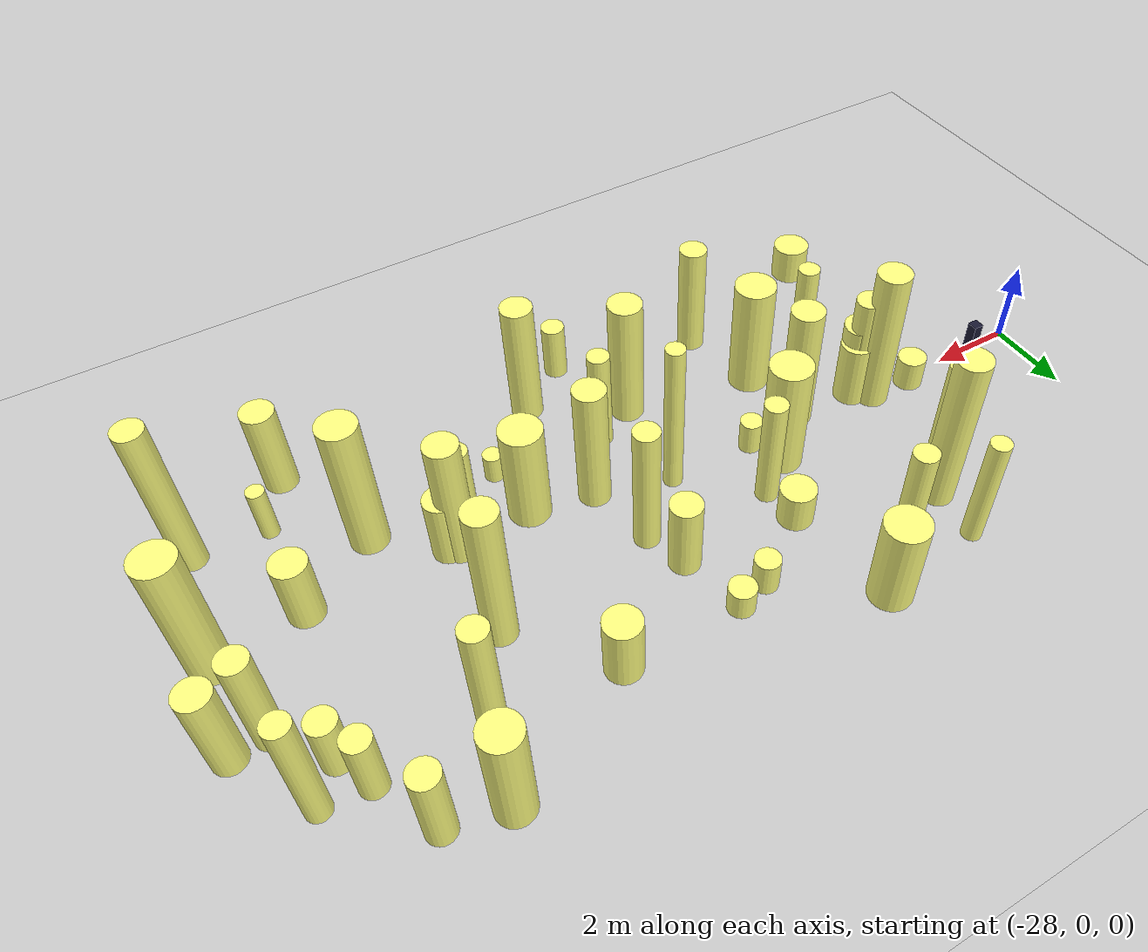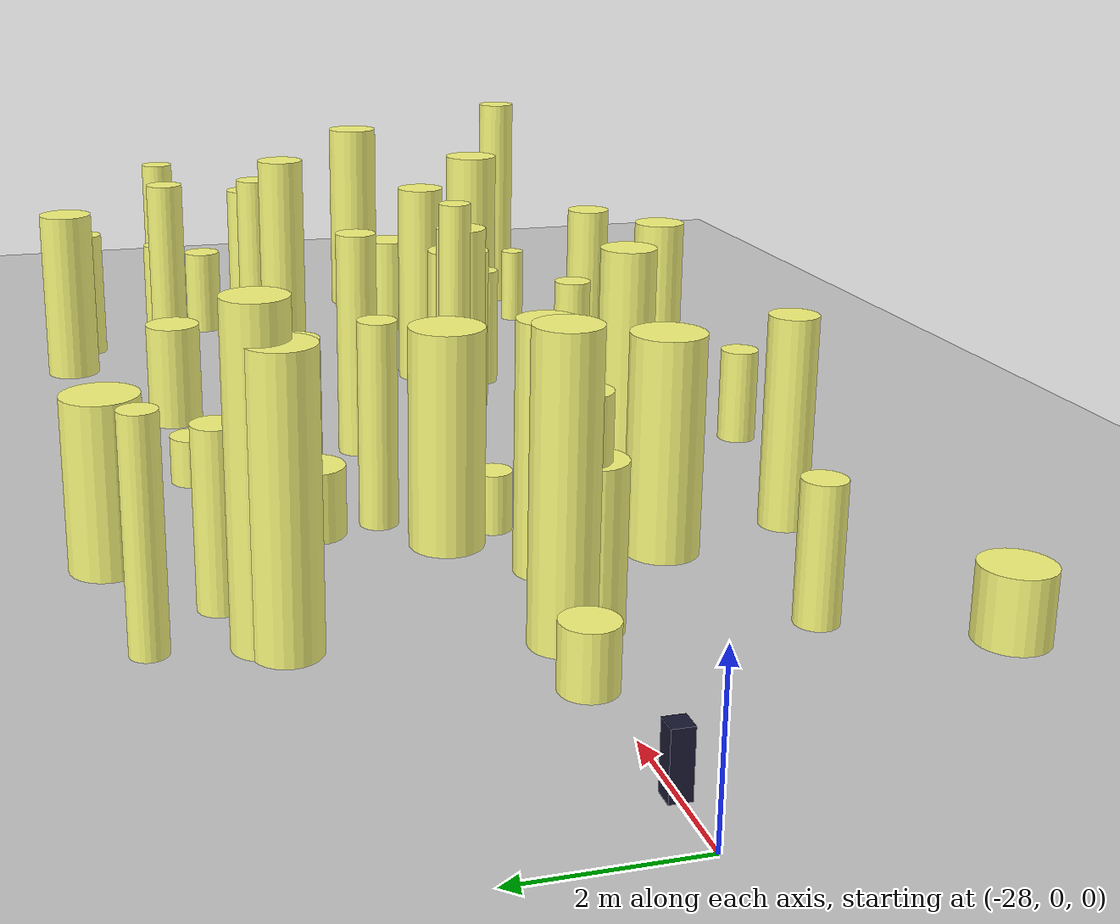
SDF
<sdf version="1.4">
 <world name="default">
  <include><uri>model://ground_plane</uri></include>
  <include><uri>model://sun</uri></include>
  <model name="forest">
   <static>true</static>
   <link name="cylinder5">
    <pose>-14.917778410111532 -2.365029276385857 0.33924573023969384 0 0 0</pose>
    <visual name="visual">
     <geometry>
      <cylinder><radius>0.22715811138292039</radius><length>0.6784914604793877</length></cylinder>
     </geometry>
     <material>
      <ambient>0.6 0.6 0.6 1</ambient>
      <diffuse>1 1 0.5 1</diffuse>
      <specular>0 0 0</specular>
      <emissive>0 0 0 1</emissive>
     </material>
    </visual>
    <collision name="collision">
     <geometry>
      <cylinder><radius>0.22715811138292039</radius><length>0.6784914604793877</length></cylinder>
     </geometry>
     <max_contacts>0</max_contacts>
    </collision>
   </link>
   <link name="cylinder6">
    <pose>-19.81368941153287 1.2810669564978836 1.3848295582383636 0 0 0</pose>
    <visual name="visual">
     <geometry>
      <cylinder><radius>0.25956951055257527</radius><length>2.7696591164767272</length></cylinder>
     </geometry>
     <material>
      <ambient>0.6 0.6 0.6 1</ambient>
      <diffuse>1 1 0.5 1</diffuse>
      <specular>0 0 0</specular>
      <emissive>0 0 0 1</emissive>
     </material>
    </visual>
    <collision name="collision">
     <geometry>
      <cylinder><radius>0.25956951055257527</radius><length>2.7696591164767272</length></cylinder>
     </geometry>
     <max_contacts>0</max_contacts>
    </collision>
   </link>
   <link name="cylinder23">
    <pose>-14.84910226127406 3.4780006436737807 0.7836656961386094 0 0 0</pose>
    <visual name="visual">
     <geometry>
      <cylinder><radius>0.41026654295973275</radius><length>1.5673313922772187</length></cylinder>
     </geometry>
     <material>
      <ambient>0.6 0.6 0.6 1</ambient>
      <diffuse>1 1 0.5 1</diffuse>
      <specular>0 0 0</specular>
      <emissive>0 0 0 1</emissive>
     </material>
    </visual>
    <collision name="collision">
     <geometry>
      <cylinder><radius>0.41026654295973275</radius><length>1.5673313922772187</length></cylinder>
     </geometry>
     <max_contacts>0</max_contacts>
    </collision>
   </link>
   <link name="cylinder26">
    <pose>-8.752198740586898 3.168655074511653 1.5249935512294304 0 0 0</pose>
    <visual name="visual">
     <geometry>
      <cylinder><radius>0.27012381679006403</radius><length>3.0499871024588607</length></cylinder>
     </geometry>
     <material>
      <ambient>0.6 0.6 0.6 1</ambient>
      <diffuse>1 1 0.5 1</diffuse>
      <specular>0 0 0</specular>
      <emissive>0 0 0 1</emissive>
     </material>
    </visual>
    <collision name="collision">
     <geometry>
      <cylinder><radius>0.27012381679006403</radius><length>3.0499871024588607</length></cylinder>
     </geometry>
     <max_contacts>0</max_contacts>
    </collision>
   </link>
   <link name="cylinder29">
    <pose>-21.121205069637394 -3.870491480591812 1.4228794701995162 0 0 0</pose>
    <visual name="visual">
     <geometry>
      <cylinder><radius>0.3268050522809638</radius><length>2.8457589403990324</length></cylinder>
     </geometry>
     <material>
      <ambient>0.6 0.6 0.6 1</ambient>
      <diffuse>1 1 0.5 1</diffuse>
      <specular>0 0 0</specular>
      <emissive>0 0 0 1</emissive>
     </material>
    </visual>
    <collision name="collision">
     <geometry>
      <cylinder><radius>0.3268050522809638</radius><length>2.8457589403990324</length></cylinder>
     </geometry>
     <max_contacts>0</max_contacts>
    </collision>
   </link>
   <link name="cylinder34">
    <pose>-20.69903656651999 0.5843863166121688 1.4367598693355228 0 0 0</pose>
    <visual name="visual">
     <geometry>
      <cylinder><radius>0.4882078344602088</radius><length>2.8735197386710456</length></cylinder>
     </geometry>
     <material>
      <ambient>0.6 0.6 0.6 1</ambient>
      <diffuse>1 1 0.5 1</diffuse>
      <specular>0 0 0</specular>
      <emissive>0 0 0 1</emissive>
     </material>
    </visual>
    <collision name="collision">
     <geometry>
      <cylinder><radius>0.4882078344602088</radius><length>2.8735197386710456</length></cylinder>
     </geometry>
     <max_contacts>0</max_contacts>
    </collision>
   </link>
   <link name="cylinder39">
    <pose>-23.253010785968282 3.0240801046155195 1.7640948192729184 0 0 0</pose>
    <visual name="visual">
     <geometry>
      <cylinder><radius>0.41207023708942214</radius><length>3.528189638545837</length></cylinder>
     </geometry>
     <material>
      <ambient>0.6 0.6 0.6 1</ambient>
      <diffuse>1 1 0.5 1</diffuse>
      <specular>0 0 0</specular>
      <emissive>0 0 0 1</emissive>
     </material>
    </visual>
    <collision name="collision">
     <geometry>
      <cylinder><radius>0.41207023708942214</radius><length>3.528189638545837</length></cylinder>
     </geometry>
     <max_contacts>0</max_contacts>
    </collision>
   </link>
   <link name="cylinder43">
    <pose>-21.91760564130516 3.5991199583601965 1.1309483220547603 0 0 0</pose>
    <visual name="visual">
     <geometry>
      <cylinder><radius>0.2883203636898688</radius><length>2.2618966441095205</length></cylinder>
     </geometry>
     <material>
      <ambient>0.6 0.6 0.6 1</ambient>
      <diffuse>1 1 0.5 1</diffuse>
      <specular>0 0 0</specular>
      <emissive>0 0 0 1</emissive>
     </material>
    </visual>
    <collision name="collision">
     <geometry>
      <cylinder><radius>0.2883203636898688</radius><length>2.2618966441095205</length></cylinder>
     </geometry>
     <max_contacts>0</max_contacts>
    </collision>
   </link>
   <link name="cylinder46">
    <pose>-13.92909294932756 -1.7483290615901192 0.9566677059769797 0 0 0</pose>
    <visual name="visual">
     <geometry>
      <cylinder><radius>0.25561517409674783</radius><length>1.9133354119539594</length></cylinder>
     </geometry>
     <material>
      <ambient>0.6 0.6 0.6 1</ambient>
      <diffuse>1 1 0.5 1</diffuse>
      <specular>0 0 0</specular>
      <emissive>0 0 0 1</emissive>
     </material>
    </visual>
    <collision name="collision">
     <geometry>
      <cylinder><radius>0.25561517409674783</radius><length>1.9133354119539594</length></cylinder>
     </geometry>
     <max_contacts>0</max_contacts>
    </collision>
   </link>
   <link name="cylinder48">
    <pose>-15.11336400138616 -1.018589655266048 1.27356760379491 0 0 0</pose>
    <visual name="visual">
     <geometry><cylinder><radius>0.4801093974047901</radius><length>2.54713520758982</length></cylinder></geometry>
     <material>
      <ambient>0.6 0.6 0.6 1</ambient>
      <diffuse>1 1 0.5 1</diffuse>
      <specular>0 0 0</specular>
      <emissive>0 0 0 1</emissive>
     </material>
    </visual>
    <collision name="collision">
     <geometry><cylinder><radius>0.4801093974047901</radius><length>2.54713520758982</length></cylinder></geometry>
     <max_contacts>0</max_contacts>
    </collision>
   </link>
   <link name="cylinder50">
    <pose>-20.33666699858231 -0.12110289623878856 0.40157781722106595 0 0 0</pose>
    <visual name="visual">
     <geometry>
      <cylinder><radius>0.26024860743227995</radius><length>0.8031556344421319</length></cylinder>
     </geometry>
     <material>
      <ambient>0.6 0.6 0.6 1</ambient>
      <diffuse>1 1 0.5 1</diffuse>
      <specular>0 0 0</specular>
      <emissive>0 0 0 1</emissive>
     </material>
    </visual>
    <collision name="collision">
     <geometry>
      <cylinder><radius>0.26024860743227995</radius><length>0.8031556344421319</length></cylinder>
     </geometry>
     <max_contacts>0</max_contacts>
    </collision>
   </link>
   <link name="cylinder52">
    <pose>-24.85859314895774 0.11412720701805323 0.39530089873004265 0 0 0</pose>
    <visual name="visual">
     <geometry>
      <cylinder><radius>0.34271118383837484</radius><length>0.7906017974600853</length></cylinder>
     </geometry>
     <material>
      <ambient>0.6 0.6 0.6 1</ambient>
      <diffuse>1 1 0.5 1</diffuse>
      <specular>0 0 0</specular>
      <emissive>0 0 0 1</emissive>
     </material>
    </visual>
    <collision name="collision">
     <geometry>
      <cylinder><radius>0.34271118383837484</radius><length>0.7906017974600853</length></cylinder>
     </geometry>
     <max_contacts>0</max_contacts>
    </collision>
   </link>
   <link name="cylinder53">
    <pose>-24.899628249531215 -4.839318611533967 0.4535438581096857 0 0 0</pose>
    <visual name="visual">
     <geometry>
      <cylinder><radius>0.4490620625943224</radius><length>0.9070877162193715</length></cylinder>
     </geometry>
     <material>
      <ambient>0.6 0.6 0.6 1</ambient>
      <diffuse>1 1 0.5 1</diffuse>
      <specular>0 0 0</specular>
      <emissive>0 0 0 1</emissive>
     </material>
    </visual>
    <collision name="collision">
     <geometry>
      <cylinder><radius>0.4490620625943224</radius><length>0.9070877162193715</length></cylinder>
     </geometry>
     <max_contacts>0</max_contacts>
    </collision>
   </link>
   <link name="cylinder55">
    <pose>-11.753609016300286 4.9426681299936845 1.3798021303241335 0 0 0</pose>
    <visual name="visual">
     <geometry>
      <cylinder><radius>0.42295153250273115</radius><length>2.759604260648267</length></cylinder>
     </geometry>
     <material>
      <ambient>0.6 0.6 0.6 1</ambient>
      <diffuse>1 1 0.5 1</diffuse>
      <specular>0 0 0</specular>
      <emissive>0 0 0 1</emissive>
     </material>
    </visual>
    <collision name="collision">
     <geometry>
      <cylinder><radius>0.42295153250273115</radius><length>2.759604260648267</length></cylinder>
     </geometry>
     <max_contacts>0</max_contacts>
    </collision>
   </link>
   <link name="cylinder57">
    <pose>-23.50087262920758 -0.25006698706027564 1.420289328322529 0 0 0</pose>
    <visual name="visual">
     <geometry>
      <cylinder><radius>0.32541499749716796</radius><length>2.840578656645058</length></cylinder>
     </geometry>
     <material>
      <ambient>0.6 0.6 0.6 1</ambient>
      <diffuse>1 1 0.5 1</diffuse>
      <specular>0 0 0</specular>
      <emissive>0 0 0 1</emissive>
     </material>
    </visual>
    <collision name="collision">
     <geometry>
      <cylinder><radius>0.32541499749716796</radius><length>2.840578656645058</length></cylinder>
     </geometry>
     <max_contacts>0</max_contacts>
    </collision>
   </link>
   <link name="cylinder59">
    <pose>-16.897757245402218 0.9737711229367196 1.6436370355466692 0 0 0</pose>
    <visual name="visual">
     <geometry>
      <cylinder><radius>0.29150850356216224</radius><length>3.2872740710933384</length></cylinder>
     </geometry>
     <material>
      <ambient>0.6 0.6 0.6 1</ambient>
      <diffuse>1 1 0.5 1</diffuse>
      <specular>0 0 0</specular>
      <emissive>0 0 0 1</emissive>
     </material>
    </visual>
    <collision name="collision">
     <geometry>
      <cylinder><radius>0.29150850356216224</radius><length>3.2872740710933384</length></cylinder>
     </geometry>
     <max_contacts>0</max_contacts>
    </collision>
   </link>
   <link name="cylinder62">
    <pose>-10.069967654731421 -3.4166140132991307 0.6626018564819176 0 0 0</pose>
    <visual name="visual">
     <geometry>
      <cylinder><radius>0.2044132507691759</radius><length>1.3252037129638352</length></cylinder>
     </geometry>
     <material>
      <ambient>0.6 0.6 0.6 1</ambient>
      <diffuse>1 1 0.5 1</diffuse>
      <specular>0 0 0</specular>
      <emissive>0 0 0 1</emissive>
     </material>
    </visual>
    <collision name="collision">
     <geometry>
      <cylinder><radius>0.2044132507691759</radius><length>1.3252037129638352</length></cylinder>
     </geometry>
     <max_contacts>0</max_contacts>
    </collision>
   </link>
   <link name="cylinder71">
    <pose>-22.913640723322317 4.502509448906043 1.4068204196841763 0 0 0</pose>
    <visual name="visual">
     <geometry>
      <cylinder><radius>0.22995706833073898</radius><length>2.8136408393683525</length></cylinder>
     </geometry>
     <material>
      <ambient>0.6 0.6 0.6 1</ambient>
      <diffuse>1 1 0.5 1</diffuse>
      <specular>0 0 0</specular>
      <emissive>0 0 0 1</emissive>
     </material>
    </visual>
    <collision name="collision">
     <geometry>
      <cylinder><radius>0.22995706833073898</radius><length>2.8136408393683525</length></cylinder>
     </geometry>
     <max_contacts>0</max_contacts>
    </collision>
   </link>
   <link name="cylinder72">
    <pose>-18.254500451792023 -0.14503143119036466 1.959947001323332 0 0 0</pose>
    <visual name="visual">
     <geometry>
      <cylinder><radius>0.21766714084566413</radius><length>3.919894002646664</length></cylinder>
     </geometry>
     <material>
      <ambient>0.6 0.6 0.6 1</ambient>
      <diffuse>1 1 0.5 1</diffuse>
      <specular>0 0 0</specular>
      <emissive>0 0 0 1</emissive>
     </material>
    </visual>
    <collision name="collision">
     <geometry>
      <cylinder><radius>0.21766714084566413</radius><length>3.919894002646664</length></cylinder>
     </geometry>
     <max_contacts>0</max_contacts>
    </collision>
   </link>
   <link name="cylinder73">
    <pose>-10.456048665860095 4.643487430770284 1.064682774315243 0 0 0</pose>
    <visual name="visual">
     <geometry>
      <cylinder><radius>0.3188699746554906</radius><length>2.129365548630486</length></cylinder>
     </geometry>
     <material>
      <ambient>0.6 0.6 0.6 1</ambient>
      <diffuse>1 1 0.5 1</diffuse>
      <specular>0 0 0</specular>
      <emissive>0 0 0 1</emissive>
     </material>
    </visual>
    <collision name="collision">
     <geometry>
      <cylinder><radius>0.3188699746554906</radius><length>2.129365548630486</length></cylinder>
     </geometry>
     <max_contacts>0</max_contacts>
    </collision>
   </link>
   <link name="cylinder76">
    <pose>-17.54071498355004 -2.106474072417633 1.275901901268432 0 0 0</pose>
    <visual name="visual">
     <geometry>
      <cylinder><radius>0.25776850970202825</radius><length>2.551803802536864</length></cylinder>
     </geometry>
     <material>
      <ambient>0.6 0.6 0.6 1</ambient>
      <diffuse>1 1 0.5 1</diffuse>
      <specular>0 0 0</specular>
      <emissive>0 0 0 1</emissive>
     </material>
    </visual>
    <collision name="collision">
     <geometry>
      <cylinder><radius>0.25776850970202825</radius><length>2.551803802536864</length></cylinder>
     </geometry>
     <max_contacts>0</max_contacts>
    </collision>
   </link>
   <link name="cylinder77">
    <pose>-19.953737560832717 2.1500699988139544 0.4702444794922516 0 0 0</pose>
    <visual name="visual">
     <geometry>
      <cylinder><radius>0.4082136146299827</radius><length>0.9404889589845032</length></cylinder>
     </geometry>
     <material>
      <ambient>0.6 0.6 0.6 1</ambient>
      <diffuse>1 1 0.5 1</diffuse>
      <specular>0 0 0</specular>
      <emissive>0 0 0 1</emissive>
     </material>
    </visual>
    <collision name="collision">
     <geometry>
      <cylinder><radius>0.4082136146299827</radius><length>0.9404889589845032</length></cylinder>
     </geometry>
     <max_contacts>0</max_contacts>
    </collision>
   </link>
   <link name="cylinder79">
    <pose>-17.72670330935204 -4.713312299139933 0.6926573970683116 0 0 0</pose>
    <visual name="visual">
     <geometry>
      <cylinder><radius>0.2791456126492164</radius><length>1.3853147941366233</length></cylinder>
     </geometry>
     <material>
      <ambient>0.6 0.6 0.6 1</ambient>
      <diffuse>1 1 0.5 1</diffuse>
      <specular>0 0 0</specular>
      <emissive>0 0 0 1</emissive>
     </material>
    </visual>
    <collision name="collision">
     <geometry>
      <cylinder><radius>0.2791456126492164</radius><length>1.3853147941366233</length></cylinder>
     </geometry>
     <max_contacts>0</max_contacts>
    </collision>
   </link>
   <link name="cylinder83">
    <pose>-21.583049230714924 -1.9842349119561775 1.4313031723864593 0 0 0</pose>
    <visual name="visual">
     <geometry>
      <cylinder><radius>0.4810565811305479</radius><length>2.8626063447729186</length></cylinder>
     </geometry>
     <material>
      <ambient>0.6 0.6 0.6 1</ambient>
      <diffuse>1 1 0.5 1</diffuse>
      <specular>0 0 0</specular>
      <emissive>0 0 0 1</emissive>
     </material>
    </visual>
    <collision name="collision">
     <geometry>
      <cylinder><radius>0.4810565811305479</radius><length>2.8626063447729186</length></cylinder>
     </geometry>
     <max_contacts>0</max_contacts>
    </collision>
   </link>
   <link name="cylinder89">
    <pose>-23.773575030947914 0.04793527870341485 1.8362470668501487 0 0 0</pose>
    <visual name="visual">
     <geometry>
      <cylinder><radius>0.3970036501932327</radius><length>3.6724941337002974</length></cylinder>
     </geometry>
     <material>
      <ambient>0.6 0.6 0.6 1</ambient>
      <diffuse>1 1 0.5 1</diffuse>
      <specular>0 0 0</specular>
      <emissive>0 0 0 1</emissive>
     </material>
    </visual>
    <collision name="collision">
     <geometry>
      <cylinder><radius>0.3970036501932327</radius><length>3.6724941337002974</length></cylinder>
     </geometry>
     <max_contacts>0</max_contacts>
    </collision>
   </link>
   <link name="cylinder90">
    <pose>-7.709804794701125 1.388779300585096 1.1533150833046615 0 0 0</pose>
    <visual name="visual">
     <geometry>
      <cylinder><radius>0.3626386035750754</radius><length>2.306630166609323</length></cylinder>
     </geometry>
     <material>
      <ambient>0.6 0.6 0.6 1</ambient>
      <diffuse>1 1 0.5 1</diffuse>
      <specular>0 0 0</specular>
      <emissive>0 0 0 1</emissive>
     </material>
    </visual>
    <collision name="collision">
     <geometry>
      <cylinder><radius>0.3626386035750754</radius><length>2.306630166609323</length></cylinder>
     </geometry>
     <max_contacts>0</max_contacts>
    </collision>
   </link>
   <link name="cylinder93">
    <pose>-18.515597959066287 -2.596019767400878 1.614408122110548 0 0 0</pose>
    <visual name="visual">
     <geometry>
      <cylinder><radius>0.3982540921928623</radius><length>3.228816244221096</length></cylinder>
     </geometry>
     <material>
      <ambient>0.6 0.6 0.6 1</ambient>
      <diffuse>1 1 0.5 1</diffuse>
      <specular>0 0 0</specular>
      <emissive>0 0 0 1</emissive>
     </material>
    </visual>
    <collision name="collision">
     <geometry>
      <cylinder><radius>0.3982540921928623</radius><length>3.228816244221096</length></cylinder>
     </geometry>
     <max_contacts>0</max_contacts>
    </collision>
   </link>
   <link name="cylinder95">
    <pose>-20.41649043960632 4.804431423710904 1.1186757282985482 0 0 0</pose>
    <visual name="visual">
     <geometry>
      <cylinder><radius>0.49363736302723615</radius><length>2.2373514565970964</length></cylinder>
     </geometry>
     <material>
      <ambient>0.6 0.6 0.6 1</ambient>
      <diffuse>1 1 0.5 1</diffuse>
      <specular>0 0 0</specular>
      <emissive>0 0 0 1</emissive>
     </material>
    </visual>
    <collision name="collision">
     <geometry>
      <cylinder><radius>0.49363736302723615</radius><length>2.2373514565970964</length></cylinder>
     </geometry>
     <max_contacts>0</max_contacts>
    </collision>
   </link>
   <link name="cylinder97">
    <pose>-9.375417512787292 2.4498212555448493 0.7351041442148323 0 0 0</pose>
    <visual name="visual">
     <geometry>
      <cylinder><radius>0.31684409360682386</radius><length>1.4702082884296646</length></cylinder>
     </geometry>
     <material>
      <ambient>0.6 0.6 0.6 1</ambient>
      <diffuse>1 1 0.5 1</diffuse>
      <specular>0 0 0</specular>
      <emissive>0 0 0 1</emissive>
     </material>
    </visual>
    <collision name="collision">
     <geometry>
      <cylinder><radius>0.31684409360682386</radius><length>1.4702082884296646</length></cylinder>
     </geometry>
     <max_contacts>0</max_contacts>
    </collision>
   </link>
   <link name="cylinder99">
    <pose>-10.021270710603925 -0.9811499817828313 0.8311901228455454 0 0 0</pose>
    <visual name="visual">
     <geometry>
      <cylinder><radius>0.3972449610279485</radius><length>1.6623802456910908</length></cylinder>
     </geometry>
     <material>
      <ambient>0.6 0.6 0.6 1</ambient>
      <diffuse>1 1 0.5 1</diffuse>
      <specular>0 0 0</specular>
      <emissive>0 0 0 1</emissive>
     </material>
    </visual>
    <collision name="collision">
     <geometry>
      <cylinder><radius>0.3972449610279485</radius><length>1.6623802456910908</length></cylinder>
     </geometry>
     <max_contacts>0</max_contacts>
    </collision>
   </link>
   <link name="cylinder101">
    <pose>-23.493678370704846 -0.3718757894489899 1.01743992721747 0 0 0</pose>
    <visual name="visual">
     <geometry>
      <cylinder><radius>0.40597313586440165</radius><length>2.03487985443494</length></cylinder>
     </geometry>
     <material>
      <ambient>0.6 0.6 0.6 1</ambient>
      <diffuse>1 1 0.5 1</diffuse>
      <specular>0 0 0</specular>
      <emissive>0 0 0 1</emissive>
     </material>
    </visual>
    <collision name="collision">
     <geometry>
      <cylinder><radius>0.40597313586440165</radius><length>2.03487985443494</length></cylinder>
     </geometry>
     <max_contacts>0</max_contacts>
    </collision>
   </link>
   <link name="cylinder104">
    <pose>-9.766096013140235 3.2481183937098415 0.8664103459802847 0 0 0</pose>
    <visual name="visual">
     <geometry>
      <cylinder><radius>0.2993859450440195</radius><length>1.7328206919605693</length></cylinder>
     </geometry>
     <material>
      <ambient>0.6 0.6 0.6 1</ambient>
      <diffuse>1 1 0.5 1</diffuse>
      <specular>0 0 0</specular>
      <emissive>0 0 0 1</emissive>
     </material>
    </visual>
    <collision name="collision">
     <geometry>
      <cylinder><radius>0.2993859450440195</radius><length>1.7328206919605693</length></cylinder>
     </geometry>
     <max_contacts>0</max_contacts>
    </collision>
   </link>
   <link name="cylinder108">
    <pose>-13.376565686686243 -0.817445900169508 1.6224845963654357 0 0 0</pose>
    <visual name="visual">
     <geometry>
      <cylinder><radius>0.37073789311537053</radius><length>3.2449691927308715</length></cylinder>
     </geometry>
     <material>
      <ambient>0.6 0.6 0.6 1</ambient>
      <diffuse>1 1 0.5 1</diffuse>
      <specular>0 0 0</specular>
      <emissive>0 0 0 1</emissive>
     </material>
    </visual>
    <collision name="collision">
     <geometry>
      <cylinder><radius>0.37073789311537053</radius><length>3.2449691927308715</length></cylinder>
     </geometry>
     <max_contacts>0</max_contacts>
    </collision>
   </link>
   <link name="cylinder114">
    <pose>-11.826569059637016 -2.105157828413766 1.743507314293599 0 0 0</pose>
    <visual name="visual">
     <geometry>
      <cylinder><radius>0.43503728187152424</radius><length>3.487014628587198</length></cylinder>
     </geometry>
     <material>
      <ambient>0.6 0.6 0.6 1</ambient>
      <diffuse>1 1 0.5 1</diffuse>
      <specular>0 0 0</specular>
      <emissive>0 0 0 1</emissive>
     </material>
    </visual>
    <collision name="collision">
     <geometry>
      <cylinder><radius>0.43503728187152424</radius><length>3.487014628587198</length></cylinder>
     </geometry>
     <max_contacts>0</max_contacts>
    </collision>
   </link>
   <link name="cylinder120">
    <pose>-23.033397151559278 3.247965748029891 1.9991418220919308 0 0 0</pose>
    <visual name="visual">
     <geometry>
      <cylinder><radius>0.3853145212856521</radius><length>3.9982836441838616</length></cylinder>
     </geometry>
     <material>
      <ambient>0.6 0.6 0.6 1</ambient>
      <diffuse>1 1 0.5 1</diffuse>
      <specular>0 0 0</specular>
      <emissive>0 0 0 1</emissive>
     </material>
    </visual>
    <collision name="collision">
     <geometry>
      <cylinder><radius>0.3853145212856521</radius><length>3.9982836441838616</length></cylinder>
     </geometry>
     <max_contacts>0</max_contacts>
    </collision>
   </link>
   <link name="cylinder126">
    <pose>-16.55188800318296 -0.6860067697449832 1.604787310863419 0 0 0</pose>
    <visual name="visual">
     <geometry>
      <cylinder><radius>0.36650729102775387</radius><length>3.209574621726838</length></cylinder>
     </geometry>
     <material>
      <ambient>0.6 0.6 0.6 1</ambient>
      <diffuse>1 1 0.5 1</diffuse>
      <specular>0 0 0</specular>
      <emissive>0 0 0 1</emissive>
     </material>
    </visual>
    <collision name="collision">
     <geometry>
      <cylinder><radius>0.36650729102775387</radius><length>3.209574621726838</length></cylinder>
     </geometry>
     <max_contacts>0</max_contacts>
    </collision>
   </link>
   <link name="cylinder127">
    <pose>-8.426762343094861 -3.532032417972389 1.964684015820951 0 0 0</pose>
    <visual name="visual">
     <geometry>
      <cylinder><radius>0.3250518922503625</radius><length>3.929368031641902</length></cylinder>
     </geometry>
     <material>
      <ambient>0.6 0.6 0.6 1</ambient>
      <diffuse>1 1 0.5 1</diffuse>
      <specular>0 0 0</specular>
      <emissive>0 0 0 1</emissive>
     </material>
    </visual>
    <collision name="collision">
     <geometry>
      <cylinder><radius>0.3250518922503625</radius><length>3.929368031641902</length></cylinder>
     </geometry>
     <max_contacts>0</max_contacts>
    </collision>
   </link>
   <link name="cylinder128">
    <pose>-18.36271080805861 3.272115472888041 0.4204176985669842 0 0 0</pose>
    <visual name="visual">
     <geometry>
      <cylinder><radius>0.28867153294276804</radius><length>0.8408353971339684</length></cylinder>
     </geometry>
     <material>
      <ambient>0.6 0.6 0.6 1</ambient>
      <diffuse>1 1 0.5 1</diffuse>
      <specular>0 0 0</specular>
      <emissive>0 0 0 1</emissive>
     </material>
    </visual>
    <collision name="collision">
     <geometry>
      <cylinder><radius>0.28867153294276804</radius><length>0.8408353971339684</length></cylinder>
     </geometry>
     <max_contacts>0</max_contacts>
    </collision>
   </link>
   <link name="cylinder130">
    <pose>-7.9940128221272175 -0.7149209955927329 1.7382074992220249 0 0 0</pose>
    <visual name="visual">
     <geometry>
      <cylinder><radius>0.449304932065991</radius><length>3.4764149984440498</length></cylinder>
     </geometry>
     <material>
      <ambient>0.6 0.6 0.6 1</ambient>
      <diffuse>1 1 0.5 1</diffuse>
      <specular>0 0 0</specular>
      <emissive>0 0 0 1</emissive>
     </material>
    </visual>
    <collision name="collision">
     <geometry>
      <cylinder><radius>0.449304932065991</radius><length>3.4764149984440498</length></cylinder>
     </geometry>
     <max_contacts>0</max_contacts>
    </collision>
   </link>
   <link name="cylinder132">
    <pose>-10.760994205000312 -4.694102813720148 1.100247027451955 0 0 0</pose>
    <visual name="visual">
     <geometry><cylinder><radius>0.3786534593309768</radius><length>2.20049405490391</length></cylinder></geometry>
     <material>
      <ambient>0.6 0.6 0.6 1</ambient>
      <diffuse>1 1 0.5 1</diffuse>
      <specular>0 0 0</specular>
      <emissive>0 0 0 1</emissive>
     </material>
    </visual>
    <collision name="collision">
     <geometry><cylinder><radius>0.3786534593309768</radius><length>2.20049405490391</length></cylinder></geometry>
     <max_contacts>0</max_contacts>
    </collision>
   </link>
   <link name="cylinder133">
    <pose>-12.120688566232419 3.3052435783845144 1.6294387236628776 0 0 0</pose>
    <visual name="visual">
     <geometry>
      <cylinder><radius>0.29314846581209647</radius><length>3.258877447325755</length></cylinder>
     </geometry>
     <material>
      <ambient>0.6 0.6 0.6 1</ambient>
      <diffuse>1 1 0.5 1</diffuse>
      <specular>0 0 0</specular>
      <emissive>0 0 0 1</emissive>
     </material>
    </visual>
    <collision name="collision">
     <geometry>
      <cylinder><radius>0.29314846581209647</radius><length>3.258877447325755</length></cylinder>
     </geometry>
     <max_contacts>0</max_contacts>
    </collision>
   </link>
   <link name="cylinder134">
    <pose>-23.388816247382543 -0.2741017585487917 0.8047112066027519 0 0 0</pose>
    <visual name="visual">
     <geometry>
      <cylinder><radius>0.40785143806481783</radius><length>1.6094224132055037</length></cylinder>
     </geometry>
     <material>
      <ambient>0.6 0.6 0.6 1</ambient>
      <diffuse>1 1 0.5 1</diffuse>
      <specular>0 0 0</specular>
      <emissive>0 0 0 1</emissive>
     </material>
    </visual>
    <collision name="collision">
     <geometry>
      <cylinder><radius>0.40785143806481783</radius><length>1.6094224132055037</length></cylinder>
     </geometry>
     <max_contacts>0</max_contacts>
    </collision>
   </link>
   <link name="cylinder135">
    <pose>-13.16508126171811 1.491735114232526 1.8829138061931445 0 0 0</pose>
    <visual name="visual">
     <geometry>
      <cylinder><radius>0.3640090918902906</radius><length>3.765827612386289</length></cylinder>
     </geometry>
     <material>
      <ambient>0.6 0.6 0.6 1</ambient>
      <diffuse>1 1 0.5 1</diffuse>
      <specular>0 0 0</specular>
      <emissive>0 0 0 1</emissive>
     </material>
    </visual>
    <collision name="collision">
     <geometry>
      <cylinder><radius>0.3640090918902906</radius><length>3.765827612386289</length></cylinder>
     </geometry>
     <max_contacts>0</max_contacts>
    </collision>
   </link>
   <link name="cylinder136">
    <pose>-21.801915525510566 -0.36253698666188505 1.5983126832126375 0 0 0</pose>
    <visual name="visual">
     <geometry>
      <cylinder><radius>0.3840000307142294</radius><length>3.196625366425275</length></cylinder>
     </geometry>
     <material>
      <ambient>0.6 0.6 0.6 1</ambient>
      <diffuse>1 1 0.5 1</diffuse>
      <specular>0 0 0</specular>
      <emissive>0 0 0 1</emissive>
     </material>
    </visual>
    <collision name="collision">
     <geometry>
      <cylinder><radius>0.3840000307142294</radius><length>3.196625366425275</length></cylinder>
     </geometry>
     <max_contacts>0</max_contacts>
    </collision>
   </link>
   <link name="cylinder140">
    <pose>-17.236017239121225 1.9370787988356142 0.9408560720239815 0 0 0</pose>
    <visual name="visual">
     <geometry><cylinder><radius>0.357020793732022</radius><length>1.881712144047963</length></cylinder></geometry>
     <material>
      <ambient>0.6 0.6 0.6 1</ambient>
      <diffuse>1 1 0.5 1</diffuse>
      <specular>0 0 0</specular>
      <emissive>0 0 0 1</emissive>
     </material>
    </visual>
    <collision name="collision">
     <geometry><cylinder><radius>0.357020793732022</radius><length>1.881712144047963</length></cylinder></geometry>
     <max_contacts>0</max_contacts>
    </collision>
   </link>
   <link name="cylinder141">
    <pose>-8.499557832318526 1.3365399851415383 1.3196515889488358 0 0 0</pose>
    <visual name="visual">
     <geometry>
      <cylinder><radius>0.31799632712454595</radius><length>2.6393031778976717</length></cylinder>
     </geometry>
     <material>
      <ambient>0.6 0.6 0.6 1</ambient>
      <diffuse>1 1 0.5 1</diffuse>
      <specular>0 0 0</specular>
      <emissive>0 0 0 1</emissive>
     </material>
    </visual>
    <collision name="collision">
     <geometry>
      <cylinder><radius>0.31799632712454595</radius><length>2.6393031778976717</length></cylinder>
     </geometry>
     <max_contacts>0</max_contacts>
    </collision>
   </link>
   <link name="cylinder145">
    <pose>-16.496724797641477 -3.842659101638307 1.5627031938149423 0 0 0</pose>
    <visual name="visual">
     <geometry>
      <cylinder><radius>0.37210958283951834</radius><length>3.1254063876298845</length></cylinder>
     </geometry>
     <material>
      <ambient>0.6 0.6 0.6 1</ambient>
      <diffuse>1 1 0.5 1</diffuse>
      <specular>0 0 0</specular>
      <emissive>0 0 0 1</emissive>
     </material>
    </visual>
    <collision name="collision">
     <geometry>
      <cylinder><radius>0.37210958283951834</radius><length>3.1254063876298845</length></cylinder>
     </geometry>
     <max_contacts>0</max_contacts>
    </collision>
   </link>
   <link name="cylinder146">
    <pose>-13.162298585018695 -0.9299179864053357 0.834798622149438 0 0 0</pose>
    <visual name="visual">
     <geometry>
      <cylinder><radius>0.3719992252858714</radius><length>1.669597244298876</length></cylinder>
     </geometry>
     <material>
      <ambient>0.6 0.6 0.6 1</ambient>
      <diffuse>1 1 0.5 1</diffuse>
      <specular>0 0 0</specular>
      <emissive>0 0 0 1</emissive>
     </material>
    </visual>
    <collision name="collision">
     <geometry>
      <cylinder><radius>0.3719992252858714</radius><length>1.669597244298876</length></cylinder>
     </geometry>
     <max_contacts>0</max_contacts>
    </collision>
   </link>
   <link name="cylinder147">
    <pose>-17.605811409632455 3.4910706195340477 0.33740964793881 0 0 0</pose>
    <visual name="visual">
     <geometry>
      <cylinder><radius>0.30786382067211016</radius><length>0.67481929587762</length></cylinder>
     </geometry>
     <material>
      <ambient>0.6 0.6 0.6 1</ambient>
      <diffuse>1 1 0.5 1</diffuse>
      <specular>0 0 0</specular>
      <emissive>0 0 0 1</emissive>
     </material>
    </visual>
    <collision name="collision">
     <geometry>
      <cylinder><radius>0.30786382067211016</radius><length>0.67481929587762</length></cylinder>
     </geometry>
     <max_contacts>0</max_contacts>
    </collision>
   </link>
   <link name="cylinder149">
    <pose>-23.958587122640907 -2.9359164304251726 0.8722061685287097 0 0 0</pose>
    <visual name="visual">
     <geometry>
      <cylinder><radius>0.27185701255981004</radius><length>1.7444123370574194</length></cylinder>
     </geometry>
     <material>
      <ambient>0.6 0.6 0.6 1</ambient>
      <diffuse>1 1 0.5 1</diffuse>
      <specular>0 0 0</specular>
      <emissive>0 0 0 1</emissive>
     </material>
    </visual>
    <collision name="collision">
     <geometry>
      <cylinder><radius>0.27185701255981004</radius><length>1.7444123370574194</length></cylinder>
     </geometry>
     <max_contacts>0</max_contacts>
    </collision>
   </link>
   <link name="cube3">
    <pose>-27.0 0.0 0.25 0 0 0</pose>
    <visual name="visual">
     <geometry><box><size>0.25 0.25 1.0</size></box></geometry>
     <material>
      <ambient>0.1 0.1 0.1 1</ambient>
      <diffuse>0.1 0.1 0.2 1</diffuse>
      <specular>0 0 0</specular>
      <emissive>0 0 0 1</emissive>
     </material>
    </visual>
    <collision name="collision">
     <geometry><box><size>0.25 0.25 1.0</size></box></geometry>
     <max_contacts>0</max_contacts>
    </collision>
   </link>
  </model>
 </world>
</sdf>
